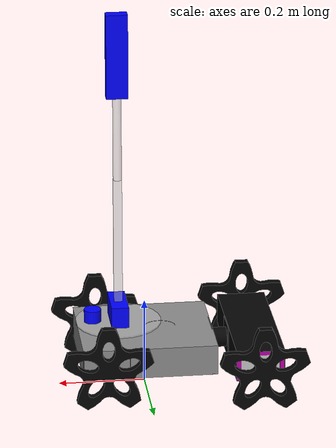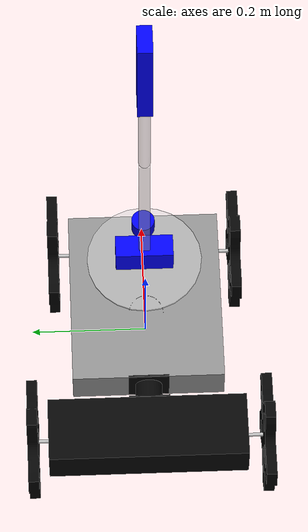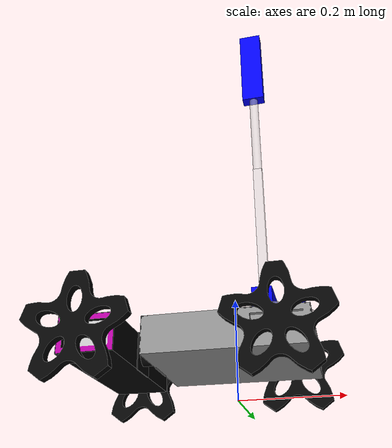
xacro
<?xml version="1.0"?>
<robot name="yozakura" xmlns:xacro="http://www.ros.org/wiki/xacro">
    <xacro:include filename="$(find yozakura_display)/robot/define.xacro"/>
    <xacro:include filename="$(find yozakura_display)/robot/config.xacro"/>
    <xacro:include filename="$(find yozakura_display)/robot/yozakura_arm2016.urdf.xacro"/>
    <xacro:include filename="$(find yozakura_display)/robot/yozakura_body.urdf.xacro"/>

    <!-- BODY -->
    <link name="root">
        <origin rpy="0 0 0" xyz="0 0 0"/>
    </link>

   <joint name="root_center" type="fixed">
          <origin rpy="0 0 0"  xyz="0 0 0.1"/>
          <parent link="root"/>
          <child link="center_yozakura"/>
    </joint>

    <link name="center_yozakura">
         <origin rpy="0 0 0" xyz="0 0 0"/>
    </link>

    <xacro:yozakura_body parent_link="center_yozakura"/>

    <!-- ARM -->
    <joint name="virtualjoint_arm_base" type="fixed">
        <origin rpy="0 0 0" xyz="${-armBase_fromBodyCenter_X} 0 ${bodyFront_height/2.0}"/>
        <parent link="body_front"/>
        <child link="virtual_arm_base"/>
    </joint>

    <link name="virtual_arm_base">
        <origin rpy="0 0 0" xyz="0 0 0"/>
    </link>

    <xacro:yozakura_arm parent_link="virtual_arm_base"/>

</robot>

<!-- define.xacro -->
<robot>

	<property name="PI" 		value= "3.141592653" />
	<property name="DEG2RAD" 	value= "0.017453293" />
	<property name="RAD2DEG" 	value="57.295779513" />

    <property name="arm_linear_frame_left_A" value="arm_linear_frame_left_A"/>
    <property name="arm_linear_frame_left_B" value="arm_linear_frame_left_B"/>
    <property name="joint_armLinear_left_A" value="joint_armLinear_left_A"/>
    <property name="joint_armLinear_left_B" value="joint_armLinear_left_B"/>
    <property name="joint_armLinear_left_C" value="joint_armLinear_left_C"/>

    <property name="arm_linear_frame_right_A" value="arm_linear_frame_right_A"/>
    <property name="arm_linear_frame_right_B" value="arm_linear_frame_right_B"/>
    <property name="joint_armLinear_right_A" value="joint_armLinear_right_A"/>
    <property name="joint_armLinear_right_B" value="joint_armLinear_right_B"/>
    <property name="joint_armLinear_right_C" value="joint_armLinear_right_C"/>

</robot>

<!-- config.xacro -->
<robot>

    <property name="robotPackagePath" value="package://yozakura_display/robot"/>
    <property name="modelDataResourseFolder" value="daes"/>

    <property name="urg_base_x" value="0.150"/>
    <property name="urg_base_y" value="0.0"/>

    <property name="bodyFront_depth" value="0.312"/>
    <property name="bodyFront_height" value="0.072"/>
    <property name="bodyFront_width" value="0.262"/>

    <property name="bodyPitchAngle_max" value="0"/>
    <property name="bodyPitchAngle_min" value="-90"/>

    <property name="bodyLink_length" value="0.038"/>

    <property name="bodyBack_depth" value="0.112"/>
    <property name="bodyBack_height" value="0.072"/>
    <property name="bodyBack_width" value="0.340"/>

    <property name="starWheel_width" value="0.018"/>
    <property name="starWheel_radius" value="0.134"/>
    <property name="starWheelAxis_radius" value="0.134"/>

    <property name="frontwheelAxis_fromBodyCenter" value="0.10"/>
    <property name="backwheelAxis_fromBodyCenter" value="-0.100"/>
    <property name="frontwheel_tread" value="0.300"/>
    <!-- from outside to outside -->
    <property name="backwheel_tread" value="0.386"/>
    <!-- from outside to outside -->

    <property name="flipper_width" value="0.025"/>
    <property name="flipper_length" value="0.178"/>
    <property name="flipper_tread" value="0.320"/>
    <!-- from outside to outside -->

    <property name="flipperBigPulley_radius" value="0.032"/>
    <property name="flipperAngle_max" value="90"/>
    <property name="flipperAngle_min" value="-90"/>
    <property name="flipperAxis_fromBodyCenter" value="0.070"/>
    <property name="flipperOffset_fromBodySide" value="0.010"/>

    <property name="armYawAngle_max" value="90"/>
    <property name="armYawAngle_min" value="-90"/>
    <property name="armPitchAngle_max" value="90"/>
    <property name="armPitchAngle_min" value="-90"/>

    <property name="armBase_fromBodyCenter_X" value="-0.061"/>
    <property name="armYawStage_fromBodyTop" value="0.014"/>
    <property name="armPitchAxis_fromYawAxis" value="0.045"/>
    <property name="armPitchAxis_fromYawStage" value="0.045"/>
    <property name="armLinearAxis_fromPitchAxis" value="0.010"/>
    <property name="armLinearAxis_fromYawStage" value="0.055"/>

    <property name="armLinearBase_ArmLinearAxis" value="0.025"/>

    <property name="armLinear_frame_length" value="0.200"/>

</robot>

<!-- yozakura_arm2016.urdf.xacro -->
<robot xmlns:xacro="http://www.ros.org/wiki/xacro">
  <xacro:include filename="$(find yozakura_display)/robot/define.xacro"/>
  <xacro:include filename="$(find yozakura_display)/robot/config.xacro"/>
  <xacro:macro name="yozakura_arm" params="parent_link">

  <!---ARM BASE-->
  <joint name="joint_arm_yaw" type="revolute">
      <axis xyz="0 0 1"/>
      <limit lower="-3.14" upper="3.14" effort="0.5293" velocity="6.159937255" />
      <origin rpy="0 0 0"
              xyz="0 0 0"/>
      <parent link="virtual_arm_base"/>
      <child link="arm_yaw"/>
  </joint>

  <link name="arm_yaw">
      <visual>
          <origin rpy="0 0 0" xyz="0 0 0.018"/>
          <geometry>
            <cylinder length="0.004" radius="0.1"/>
          </geometry>
          <material name="gray">
            <color rgba="0.8 0.8 0.8 0.5"/>
          </material>
      </visual>
  </link>

  <!--URG-->
  <joint name="virtualjoint_urg" type="fixed">
        <origin rpy="0 0 0"
                xyz="0.060 0 0"/>
        <parent link="arm_yaw"/>
        <child link="laser_link"/>
  </joint>

  <link name="laser_link">
      <visual>
        <origin rpy="0 0 0" xyz="0 0 0.035"/>
        <geometry>
           <cylinder length="0.03" radius="0.02"/>
        </geometry>
        <material name="black"/>
      </visual>
  </link>

  <joint name="joint_pitch_actuator" type="fixed">
      <origin rpy="0 0 0"
              xyz="0 0 0.02"/>
      <parent link="arm_yaw"/>
      <child link="pitch_actuator"/>
  </joint>

  <link name="pitch_actuator">
       <visual>
           <origin rpy="0 0 0" xyz="0 0 0.025"/>
           <geometry>
             <box size="0.04 0.1 0.05"/>
           </geometry>
           <material name="black">
              <color rgba="0 0 1"/>
           </material>
       </visual>
  </link>

  <joint name="joint_arm_pitch1" type="revolute">
       <axis xyz="0 1 0"/>
      <limit lower="-3.14" upper="3.14" effort="0.5293" velocity="6.159937255"/>
      <origin rpy="0 0 0"
              xyz="0 0 0.05"/>
      <parent link="pitch_actuator"/>
      <child link="arm_pitch1"/>
  </joint>

  <link name="arm_pitch1">
      <visual>
          <origin rpy="0 0 0"
                  xyz="0 0 0.15"/>
          <geometry>
            <box size="0.019 0.019 0.3"/>
          </geometry>
          <material name="gray"/>
      </visual>
  </link>

  <!---ARM BELLOWS-->
  <joint name="joint_arm_pitch2" type="revolute">
      <axis xyz="0 1 0"/>
      <limit lower="-3.14" upper="3.14" effort="0.5293" velocity="6.159937255" />
      <origin rpy="0 0 0" xyz="0 0 0.3"/>
      <parent link="arm_pitch1"/>
      <child link="arm_pitch2"/>
  </joint>

  <link name="arm_pitch2">
      <visual>
         <origin rpy="0 0 0"
                xyz="0 0 0.10"/>
         <geometry>
             <cylinder length="0.2" radius="0.01"/>
         </geometry>
         <material name="gray"/>
      </visual>
  </link>

  <joint name="joint_arm_camera" type="revolute">
      <axis xyz="1 0 0"/>
      <limit lower="-3.14" upper="3.14" effort="0.5293" velocity="6.159937255" />
      <origin rpy="0 0 0" xyz="0 0 0.2"/>
      <parent link="arm_pitch2"/>
      <child link="arm_camera"/>
  </joint>

  <link name="arm_camera">
     <visual>
        <origin rpy="0 0 0" xyz="0 0 0.10"/>
        <geometry>
            <box size="0.05 0.025 0.2"/>
        </geometry>
        <material name="black">
            <color rgba="0 0 1"/>
        </material>
     </visual>
  </link>
  </xacro:macro>
</robot>

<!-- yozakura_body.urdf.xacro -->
<robot xmlns:xacro="http://www.ros.org/wiki/xacro">
    <xacro:include filename="$(find yozakura_display)/robot/define.xacro"/>
    <xacro:include filename="$(find yozakura_display)/robot/config.xacro"/>
    <xacro:include filename="$(find yozakura_display)/robot/wheel_macro.xacro"/>

    <xacro:macro name="yozakura_body" params="parent_link">

        <joint name="joint_body_front_pitch" type="continuous">
            <axis xyz="0 1 0"/>
            <origin rpy="0 0 0"
                    xyz="0 0 0"/>
            <parent link="${parent_link}"/>
            <child link="virtualLink_body_front"/>
        </joint>

        <link name="virtualLink_body_front"/>

        <joint name="joint_body_front_roll" type="continuous">
            <axis xyz="1 0 0"/>
            <origin rpy="0 0 0" xyz="0 0 0"/>
            <parent link="virtualLink_body_front"/>
            <child link="body_front"/>
        </joint>

        <link name="body_front">
            <visual>
                <origin rpy="0 0 0" xyz="0 0 0"/>
                <geometry>
                    <mesh filename="${robotPackagePath}/${modelDataResourseFolder}/front_body.dae"/>
                </geometry>
            </visual>
        </link>

        <joint name="joint_body_back_pitch" type="revolute">
            <axis xyz="0 1 0"/>
            <limit lower="${DEG2RAD*bodyPitchAngle_min}" effort="1000.0"
                   upper="${DEG2RAD*bodyPitchAngle_max}" velocity="0.5"/>
            <origin rpy="0 0 0"
                    xyz="${-bodyFront_depth/2.0} 0 ${-bodyFront_height/2.0}"/>
            <parent link="body_front"/>
            <child link="body_link"/>
        </joint>

        <link name="body_link">
            <visual>
                <origin rpy="0 0 0"
                        xyz="${-bodyLink_length/2.0} 0 ${bodyFront_height/2.0}"/>
                <geometry>
                    <mesh filename="${robotPackagePath}/${modelDataResourseFolder}/body_roll.dae"/>
                </geometry>
            </visual>
        </link>

        <joint name="joint_body_back_roll" type="continuous">
            <axis xyz="1 0 0"/>
            <origin rpy="0 0 0" xyz="0 0 0"/>
            <parent link="body_link"/>
            <child link="body_back"/>
        </joint>

        <link name="body_back">
            <visual>
                <origin rpy="0 0 0"
                        xyz="${-bodyLink_length - bodyBack_depth/2.0} 0 ${bodyBack_height/2.0}"/>
                <geometry>
                    <mesh filename="${robotPackagePath}/${modelDataResourseFolder}/body_back.dae"/>
                </geometry>
            </visual>
        </link>

        <!-- WHEELS -->
        <xacro:combine_lr_wheels
                joint_name="joint_starwheel_front" parent="body_front"
                suffix="front" wheel_tread="${frontwheel_tread}">
            <origin rpy="0 0 0"
                    xyz="${frontwheelAxis_fromBodyCenter} 0 0"/>
        </xacro:combine_lr_wheels>

        <xacro:combine_lr_wheels
                joint_name="joint_starwheel_back" parent="body_back"
                suffix="back" wheel_tread="${backwheel_tread}">
            <origin rpy="0 0 0"
                    xyz="${backwheelAxis_fromBodyCenter} 0 ${bodyBack_height/2.0}"/>
        </xacro:combine_lr_wheels>

    </xacro:macro>
</robot>

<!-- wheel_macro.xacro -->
<robot xmlns:xacro="http://www.ros.org/wiki/xacro">
    <xacro:include filename="$(find yozakura_display)/robot/config.xacro"/>

    <xacro:macro name="combine_lr_wheels"
                 params="joint_name parent suffix wheel_tread *origin">

        <!-- Axis -->
        <joint name="${joint_name}" type="continuous">
            <axis xyz="0 1 0"/>
            <insert_block name="origin"/>
            <parent link="${parent}"/>
            <child link="virtual_starWheelAxisLink_${suffix}"/>
        </joint>

        <link name="virtual_starWheelAxisLink_${suffix}"/>

        <!-- left -->
        <joint name="fixedJoint_left_${suffix}" type="fixed">
            <parent link="virtual_starWheelAxisLink_${suffix}"/>
            <child link="starWheel_left_${suffix}"/>
            <origin xyz="0 ${wheel_tread/2.0} 0"/>
        </joint>

        <link name="starWheel_left_${suffix}">
            <visual>
                <origin rpy="0 0 0"
                        xyz="0 0 0"/>
                <geometry>
                    <mesh filename="${robotPackagePath}/${modelDataResourseFolder}/wheel_left.dae"/>
                </geometry>
            </visual>
        </link>

        <!-- right -->
        <joint name="fixedJoint_right_${suffix}" type="fixed">
            <parent link="virtual_starWheelAxisLink_${suffix}"/>
            <child link="starWheel_right_${suffix}"/>
            <origin xyz="0 ${-wheel_tread/2.0} 0"/>
        </joint>

        <link name="starWheel_right_${suffix}">
            <visual>
                <origin rpy="0 0 0"
                        xyz="0 0 0"/>
                <geometry>
                    <mesh filename="${robotPackagePath}/${modelDataResourseFolder}/wheel_right.dae"/>
                </geometry>
            </visual>
        </link>

    </xacro:macro>
</robot>
